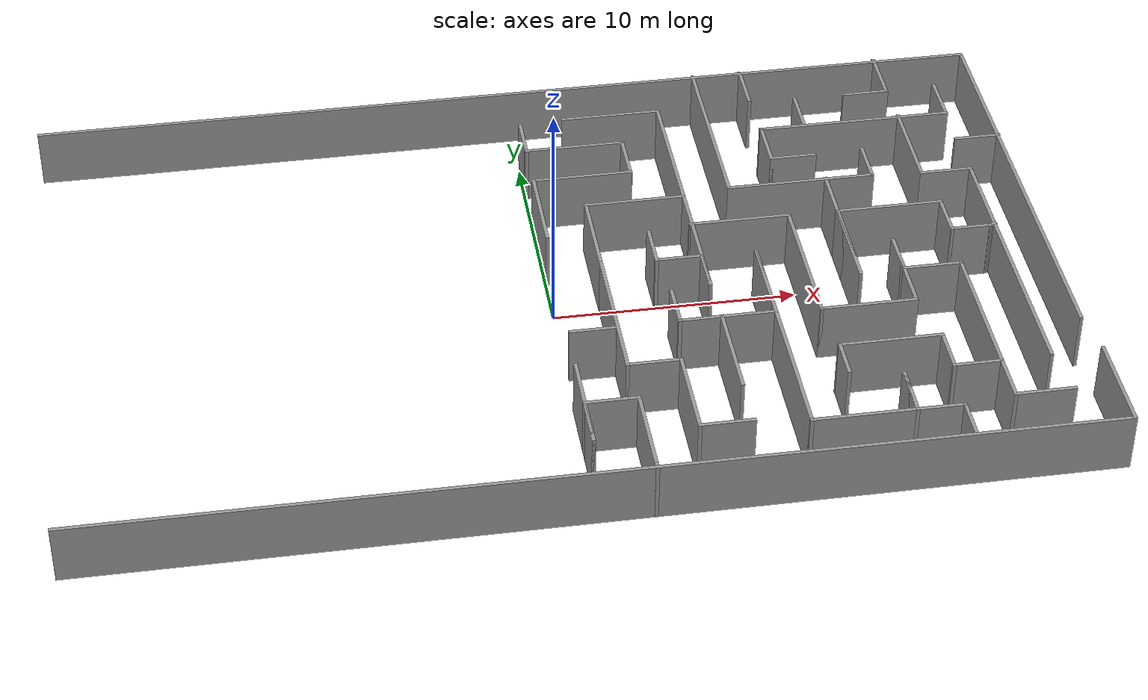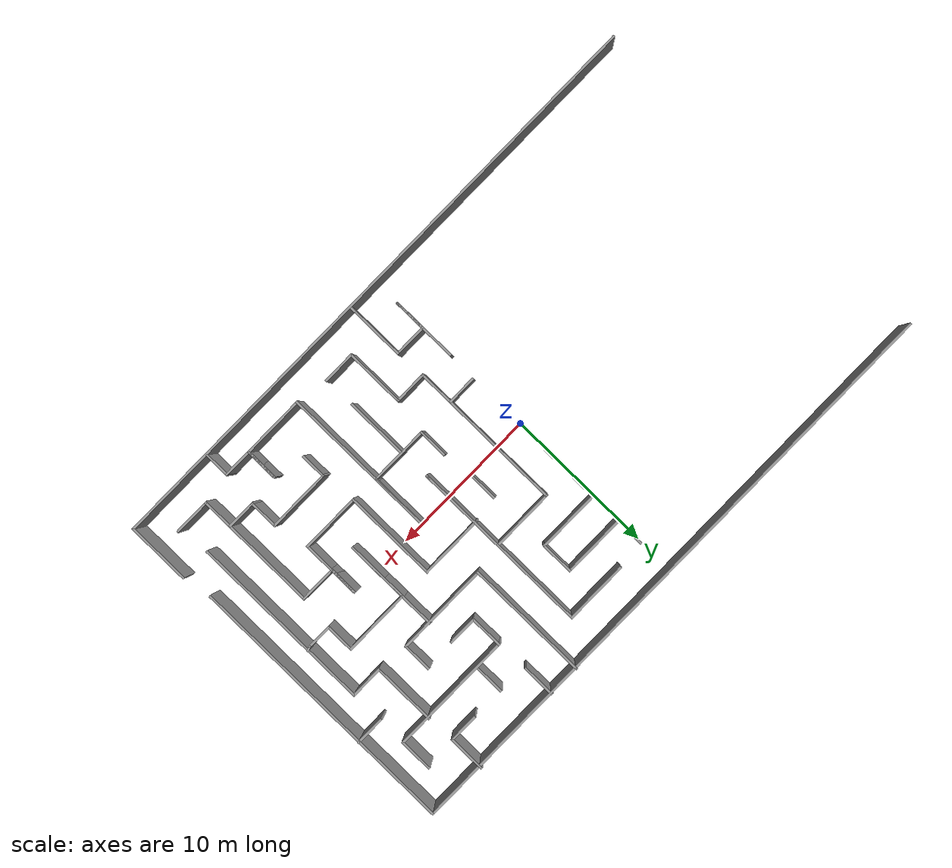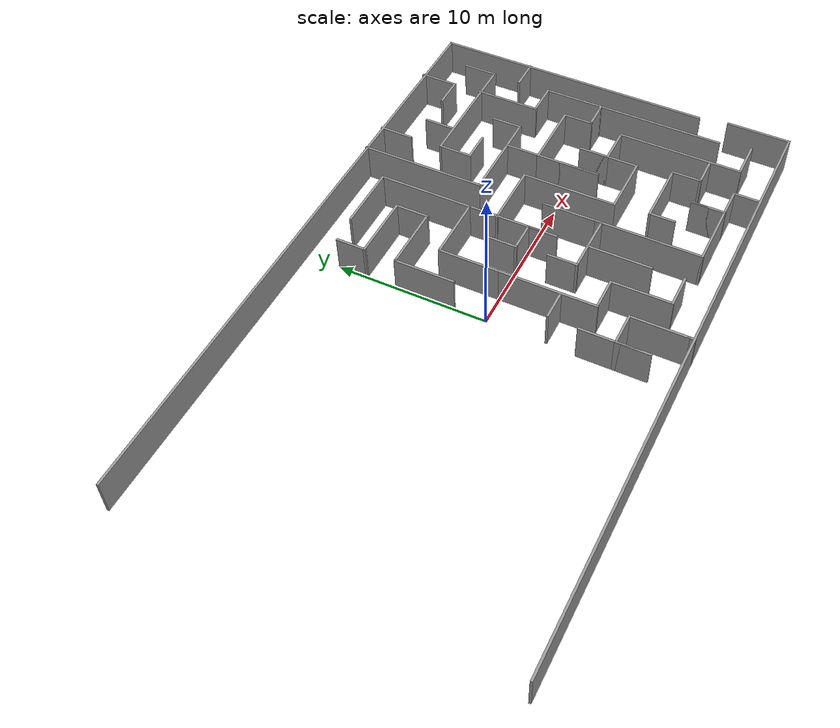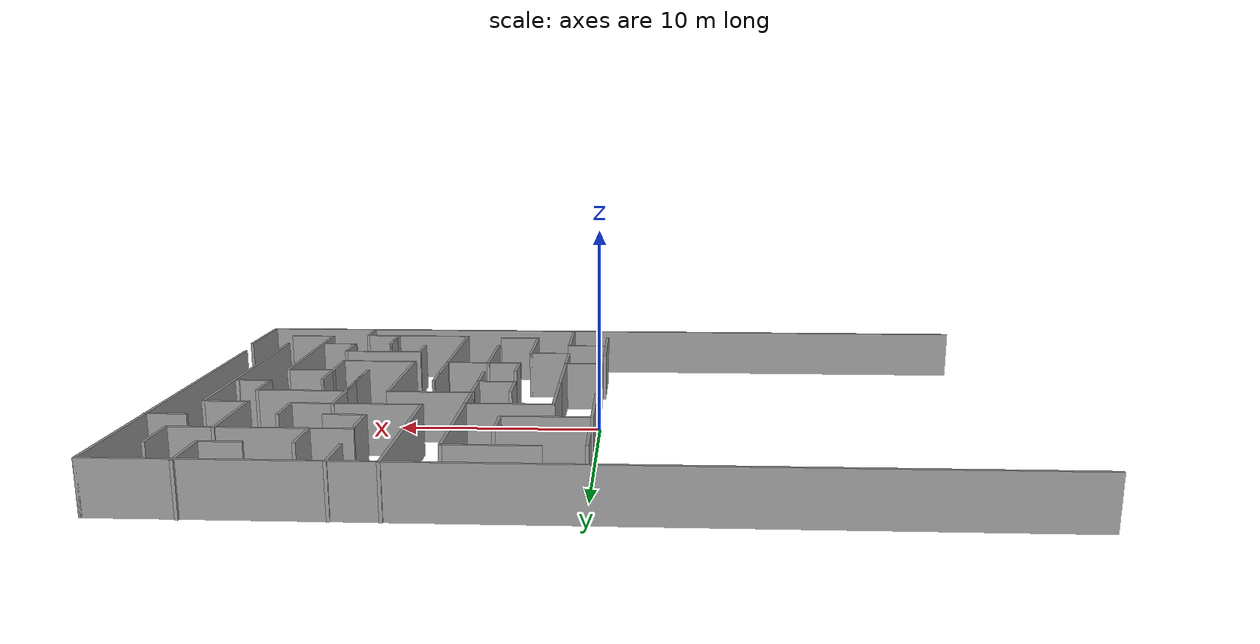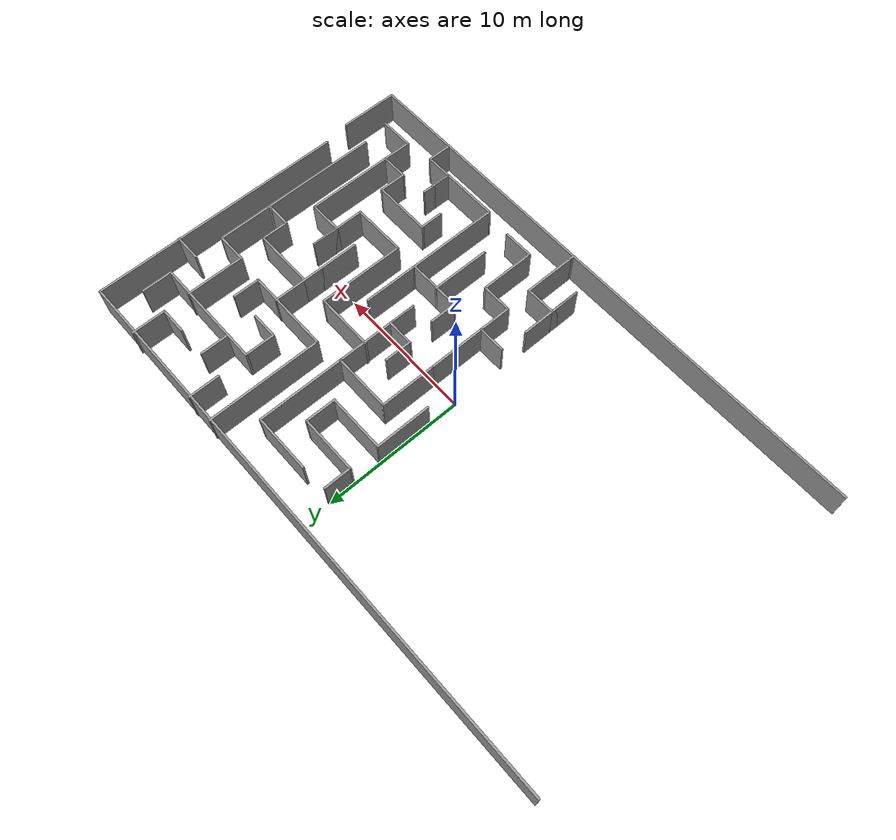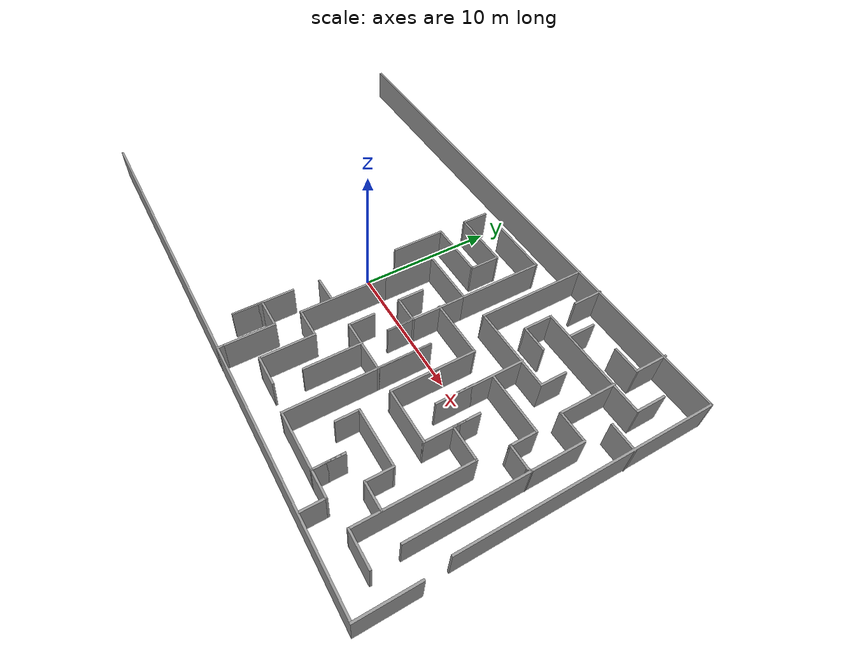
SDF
<sdf version="1.7">
 <model name="maze_model">
  <pose>0.068092 0.23364 0 0 -0 0</pose>
  <link name="Wall_104">
   <collision name="Wall_104_Collision">
    <geometry><box><size>4 0.15 2.5</size></box></geometry>
    <pose>0 0 1.25 0 -0 0</pose>
   </collision>
   <visual name="Wall_104_Visual">
    <pose>0 0 1.25 0 -0 0</pose>
    <geometry><box><size>4 0.15 2.5</size></box></geometry>
    <material>
     <script><uri>file://media/materials/scripts/gazebo.material</uri><name>Gazebo/Grey</name></script>
     <ambient>1 1 1 1</ambient>
    </material>
    <meta><layer>0</layer></meta>
   </visual>
   <pose>0.004921 3.89265 0 0 -0 1.5708</pose>
  </link>
  <link name="Wall_105">
   <collision name="Wall_105_Collision">
    <geometry><box><size>4.25 0.15 2.5</size></box></geometry>
    <pose>0 0 1.25 0 -0 0</pose>
   </collision>
   <visual name="Wall_105_Visual">
    <pose>0 0 1.25 0 -0 0</pose>
    <geometry><box><size>4.25 0.15 2.5</size></box></geometry>
    <material>
     <script><uri>file://media/materials/scripts/gazebo.material</uri><name>Gazebo/Grey</name></script>
     <ambient>1 1 1 1</ambient>
    </material>
    <meta><layer>0</layer></meta>
   </visual>
   <pose>2.05492 5.81765 0 0 -0 0</pose>
  </link>
  <link name="Wall_106">
   <collision name="Wall_106_Collision">
    <geometry><box><size>2.25 0.15 2.5</size></box></geometry>
    <pose>0 0 1.25 0 -0 0</pose>
   </collision>
   <visual name="Wall_106_Visual">
    <pose>0 0 1.25 0 -0 0</pose>
    <geometry><box><size>2.25 0.15 2.5</size></box></geometry>
    <material>
     <script><uri>file://media/materials/scripts/gazebo.material</uri><name>Gazebo/Grey</name></script>
     <ambient>1 1 1 1</ambient>
    </material>
    <meta><layer>0</layer></meta>
   </visual>
   <pose>4.10492 6.86765 0 0 -0 1.5708</pose>
  </link>
  <link name="Wall_107">
   <collision name="Wall_107_Collision">
    <geometry><box><size>4.25 0.15 2.5</size></box></geometry>
    <pose>0 0 1.25 0 -0 0</pose>
   </collision>
   <visual name="Wall_107_Visual">
    <pose>0 0 1.25 0 -0 0</pose>
    <geometry><box><size>4.25 0.15 2.5</size></box></geometry>
    <material>
     <script><uri>file://media/materials/scripts/gazebo.material</uri><name>Gazebo/Grey</name></script>
     <ambient>1 1 1 1</ambient>
    </material>
    <meta><layer>0</layer></meta>
   </visual>
   <pose>2.05492 7.91765 0 0 -0 3.14159</pose>
  </link>
  <link name="Wall_108">
   <collision name="Wall_108_Collision">
    <geometry><box><size>2 0.15 2.5</size></box></geometry>
    <pose>0 0 1.25 0 -0 0</pose>
   </collision>
   <visual name="Wall_108_Visual">
    <pose>0 0 1.25 0 -0 0</pose>
    <geometry><box><size>2 0.15 2.5</size></box></geometry>
    <material>
     <script><uri>file://media/materials/scripts/gazebo.material</uri><name>Gazebo/Grey</name></script>
     <ambient>1 1 1 1</ambient>
    </material>
    <meta><layer>0</layer></meta>
   </visual>
   <pose>0.004921 8.84265 0 0 -0 1.5708</pose>
  </link>
  <link name="Wall_115">
   <collision name="Wall_115_Collision">
    <geometry><box><size>4.5 0.15 2.5</size></box></geometry>
    <pose>0 0 1.25 0 -0 0</pose>
   </collision>
   <visual name="Wall_115_Visual">
    <pose>0 0 1.25 0 -0 0</pose>
    <geometry><box><size>4.5 0.15 2.5</size></box></geometry>
    <material>
     <script><uri>file://media/materials/scripts/gazebo.material</uri><name>Gazebo/Grey</name></script>
     <ambient>1 1 1 1</ambient>
    </material>
    <meta><layer>0</layer></meta>
   </visual>
   <pose>-0.092291 -8.24265 0 0 -0 -1.5708</pose>
  </link>
  <link name="Wall_116">
   <collision name="Wall_116_Collision">
    <geometry><box><size>2.25 0.15 2.5</size></box></geometry>
    <pose>0 0 1.25 0 -0 0</pose>
   </collision>
   <visual name="Wall_116_Visual">
    <pose>0 0 1.25 0 -0 0</pose>
    <geometry><box><size>2.25 0.15 2.5</size></box></geometry>
    <material>
     <script><uri>file://media/materials/scripts/gazebo.material</uri><name>Gazebo/Grey</name></script>
     <ambient>1 1 1 1</ambient>
    </material>
    <meta><layer>0</layer></meta>
   </visual>
   <pose>-0.092291 -9.36765 0 0 -0 1.5708</pose>
  </link>
  <link name="Wall_117">
   <collision name="Wall_117_Collision">
    <geometry><box><size>2.25 0.15 2.5</size></box></geometry>
    <pose>0 0 1.25 0 -0 0</pose>
   </collision>
   <visual name="Wall_117_Visual">
    <pose>0 0 1.25 0 -0 0</pose>
    <geometry><box><size>2.25 0.15 2.5</size></box></geometry>
    <material>
     <script><uri>file://media/materials/scripts/gazebo.material</uri><name>Gazebo/Grey</name></script>
     <ambient>1 1 1 1</ambient>
    </material>
    <meta><layer>0</layer></meta>
   </visual>
   <pose>0.957709 -8.31766 0 0 -0 0</pose>
  </link>
  <link name="Wall_118">
   <collision name="Wall_118_Collision">
    <geometry><box><size>3.75 0.15 2.5</size></box></geometry>
    <pose>0 0 1.25 0 -0 0</pose>
   </collision>
   <visual name="Wall_118_Visual">
    <pose>0 0 1.25 0 -0 0</pose>
    <geometry><box><size>3.75 0.15 2.5</size></box></geometry>
    <material>
     <script><uri>file://media/materials/scripts/gazebo.material</uri><name>Gazebo/Grey</name></script>
     <ambient>1 1 1 1</ambient>
    </material>
    <meta><layer>0</layer></meta>
   </visual>
   <pose>2.00771 -10.1177 0 0 -0 -1.5708</pose>
  </link>
  <link name="Wall_119">
   <collision name="Wall_119_Collision">
    <geometry><box><size>0.5 0.15 2.5</size></box></geometry>
    <pose>0 0 1.25 0 -0 0</pose>
   </collision>
   <visual name="Wall_119_Visual">
    <pose>0 0 1.25 0 -0 0</pose>
    <geometry><box><size>0.5 0.15 2.5</size></box></geometry>
    <material>
     <script><uri>file://media/materials/scripts/gazebo.material</uri><name>Gazebo/Grey</name></script>
     <ambient>1 1 1 1</ambient>
    </material>
    <meta><layer>0</layer></meta>
   </visual>
   <pose>2.00771 -12.0927 0 0 -0 -1.5708</pose>
  </link>
  <link name="Wall_121">
   <collision name="Wall_121_Collision">
    <geometry><box><size>4 0.15 2.5</size></box></geometry>
    <pose>0 0 1.25 0 -0 0</pose>
   </collision>
   <visual name="Wall_121_Visual">
    <pose>0 0 1.25 0 -0 0</pose>
    <geometry><box><size>4 0.15 2.5</size></box></geometry>
    <material>
     <script><uri>file://media/materials/scripts/gazebo.material</uri><name>Gazebo/Grey</name></script>
     <ambient>1 1 1 1</ambient>
    </material>
    <meta><layer>0</layer></meta>
   </visual>
   <pose>1.89756 1.90459 0 0 -0 1.5708</pose>
  </link>
  <link name="Wall_122">
   <collision name="Wall_122_Collision">
    <geometry><box><size>4.25 0.15 2.5</size></box></geometry>
    <pose>0 0 1.25 0 -0 0</pose>
   </collision>
   <visual name="Wall_122_Visual">
    <pose>0 0 1.25 0 -0 0</pose>
    <geometry><box><size>4.25 0.15 2.5</size></box></geometry>
    <material>
     <script><uri>file://media/materials/scripts/gazebo.material</uri><name>Gazebo/Grey</name></script>
     <ambient>1 1 1 1</ambient>
    </material>
    <meta><layer>0</layer></meta>
   </visual>
   <pose>3.94756 3.82959 0 0 -0 0</pose>
  </link>
  <link name="Wall_123">
   <collision name="Wall_123_Collision">
    <geometry><box><size>6.25 0.15 2.5</size></box></geometry>
    <pose>0 0 1.25 0 -0 0</pose>
   </collision>
   <visual name="Wall_123_Visual">
    <pose>0 0 1.25 0 -0 0</pose>
    <geometry><box><size>6.25 0.15 2.5</size></box></geometry>
    <material>
     <script><uri>file://media/materials/scripts/gazebo.material</uri><name>Gazebo/Grey</name></script>
     <ambient>1 1 1 1</ambient>
    </material>
    <meta><layer>0</layer></meta>
   </visual>
   <pose>5.99756 6.87959 0 0 -0 1.5708</pose>
  </link>
  <link name="Wall_124">
   <collision name="Wall_124_Collision">
    <geometry><box><size>4.25 0.15 2.5</size></box></geometry>
    <pose>0 0 1.25 0 -0 0</pose>
   </collision>
   <visual name="Wall_124_Visual">
    <pose>0 0 1.25 0 -0 0</pose>
    <geometry><box><size>4.25 0.15 2.5</size></box></geometry>
    <material>
     <script><uri>file://media/materials/scripts/gazebo.material</uri><name>Gazebo/Grey</name></script>
     <ambient>1 1 1 1</ambient>
    </material>
    <meta><layer>0</layer></meta>
   </visual>
   <pose>3.94756 9.92959 0 0 -0 3.14159</pose>
  </link>
  <link name="Wall_126">
   <collision name="Wall_126_Collision">
    <geometry><box><size>6 0.15 2.5</size></box></geometry>
    <pose>0 0 1.25 0 -0 0</pose>
   </collision>
   <visual name="Wall_126_Visual">
    <pose>0 0 1.25 0 -0 0</pose>
    <geometry><box><size>6 0.15 2.5</size></box></geometry>
    <material>
     <script><uri>file://media/materials/scripts/gazebo.material</uri><name>Gazebo/Grey</name></script>
     <ambient>1 1 1 1</ambient>
    </material>
    <meta><layer>0</layer></meta>
   </visual>
   <pose>5.99756 0.904594 0 0 -0 -1.5708</pose>
  </link>
  <link name="Wall_127">
   <collision name="Wall_127_Collision">
    <geometry><box><size>2 0.15 2.5</size></box></geometry>
    <pose>0 0 1.25 0 -0 0</pose>
   </collision>
   <visual name="Wall_127_Visual">
    <pose>0 0 1.25 0 -0 0</pose>
    <geometry><box><size>2 0.15 2.5</size></box></geometry>
    <material>
     <script><uri>file://media/materials/scripts/gazebo.material</uri><name>Gazebo/Grey</name></script>
     <ambient>1 1 1 1</ambient>
    </material>
    <meta><layer>0</layer></meta>
   </visual>
   <pose>5.99756 -1.09541 0 0 -0 1.5708</pose>
  </link>
  <link name="Wall_128">
   <collision name="Wall_128_Collision">
    <geometry><box><size>2 0.15 2.5</size></box></geometry>
    <pose>0 0 1.25 0 -0 0</pose>
   </collision>
   <visual name="Wall_128_Visual">
    <pose>0 0 1.25 0 -0 0</pose>
    <geometry><box><size>2 0.15 2.5</size></box></geometry>
    <material>
     <script><uri>file://media/materials/scripts/gazebo.material</uri><name>Gazebo/Grey</name></script>
     <ambient>1 1 1 1</ambient>
    </material>
    <meta><layer>0</layer></meta>
   </visual>
   <pose>5.07256 -0.170406 0 0 -0 3.14159</pose>
  </link>
  <link name="Wall_129">
   <collision name="Wall_129_Collision">
    <geometry><box><size>2 0.15 2.5</size></box></geometry>
    <pose>0 0 1.25 0 -0 0</pose>
   </collision>
   <visual name="Wall_129_Visual">
    <pose>0 0 1.25 0 -0 0</pose>
    <geometry><box><size>2 0.15 2.5</size></box></geometry>
    <material>
     <script><uri>file://media/materials/scripts/gazebo.material</uri><name>Gazebo/Grey</name></script>
     <ambient>1 1 1 1</ambient>
    </material>
    <meta><layer>0</layer></meta>
   </visual>
   <pose>4.14756 0.754594 0 0 -0 1.5708</pose>
  </link>
  <link name="Wall_131">
   <collision name="Wall_131_Collision">
    <geometry><box><size>4.25 0.15 2.5</size></box></geometry>
    <pose>0 0 1.25 0 -0 0</pose>
   </collision>
   <visual name="Wall_131_Visual">
    <pose>0 0 1.25 0 -0 0</pose>
    <geometry><box><size>4.25 0.15 2.5</size></box></geometry>
    <material>
     <script><uri>file://media/materials/scripts/gazebo.material</uri><name>Gazebo/Grey</name></script>
     <ambient>1 1 1 1</ambient>
    </material>
    <meta><layer>0</layer></meta>
   </visual>
   <pose>7.98744 1.93097 0 0 -0 0</pose>
  </link>
  <link name="Wall_132">
   <collision name="Wall_132_Collision">
    <geometry><box><size>6.25 0.15 2.5</size></box></geometry>
    <pose>0 0 1.25 0 -0 0</pose>
   </collision>
   <visual name="Wall_132_Visual">
    <pose>0 0 1.25 0 -0 0</pose>
    <geometry><box><size>6.25 0.15 2.5</size></box></geometry>
    <material>
     <script><uri>file://media/materials/scripts/gazebo.material</uri><name>Gazebo/Grey</name></script>
     <ambient>1 1 1 1</ambient>
    </material>
    <meta><layer>0</layer></meta>
   </visual>
   <pose>10.0374 -1.11903 0 0 -0 -1.5708</pose>
  </link>
  <link name="Wall_133">
   <collision name="Wall_133_Collision">
    <geometry><box><size>4 0.15 2.5</size></box></geometry>
    <pose>0 0 1.25 0 -0 0</pose>
   </collision>
   <visual name="Wall_133_Visual">
    <pose>0 0 1.25 0 -0 0</pose>
    <geometry><box><size>4 0.15 2.5</size></box></geometry>
    <material>
     <script><uri>file://media/materials/scripts/gazebo.material</uri><name>Gazebo/Grey</name></script>
     <ambient>1 1 1 1</ambient>
    </material>
    <meta><layer>0</layer></meta>
   </visual>
   <pose>11.9624 -4.16903 0 0 -0 0</pose>
  </link>
  <link name="Wall_134">
   <collision name="Wall_134_Collision">
    <geometry><box><size>4 0.15 2.5</size></box></geometry>
    <pose>0 0 1.25 0 -0 0</pose>
   </collision>
   <visual name="Wall_134_Visual">
    <pose>0 0 1.25 0 -0 0</pose>
    <geometry><box><size>4 0.15 2.5</size></box></geometry>
    <material>
     <script><uri>file://media/materials/scripts/gazebo.material</uri><name>Gazebo/Grey</name></script>
     <ambient>1 1 1 1</ambient>
    </material>
    <meta><layer>0</layer></meta>
   </visual>
   <pose>13.8874 -2.24403 0 0 -0 1.5708</pose>
  </link>
  <link name="Wall_135">
   <collision name="Wall_135_Collision">
    <geometry><box><size>2 0.15 2.5</size></box></geometry>
    <pose>0 0 1.25 0 -0 0</pose>
   </collision>
   <visual name="Wall_135_Visual">
    <pose>0 0 1.25 0 -0 0</pose>
    <geometry><box><size>2 0.15 2.5</size></box></geometry>
    <material>
     <script><uri>file://media/materials/scripts/gazebo.material</uri><name>Gazebo/Grey</name></script>
     <ambient>1 1 1 1</ambient>
    </material>
    <meta><layer>0</layer></meta>
   </visual>
   <pose>13.8874 -1.24403 0 0 -0 -1.5708</pose>
  </link>
  <link name="Wall_136">
   <collision name="Wall_136_Collision">
    <geometry><box><size>2.5 0.15 2.5</size></box></geometry>
    <pose>0 0 1.25 0 -0 0</pose>
   </collision>
   <visual name="Wall_136_Visual">
    <pose>0 0 1.25 0 -0 0</pose>
    <geometry><box><size>2.5 0.15 2.5</size></box></geometry>
    <material>
     <script><uri>file://media/materials/scripts/gazebo.material</uri><name>Gazebo/Grey</name></script>
     <ambient>1 1 1 1</ambient>
    </material>
    <meta><layer>0</layer></meta>
   </visual>
   <pose>15.0624 -2.16903 0 0 -0 0</pose>
  </link>
  <link name="Wall_137">
   <collision name="Wall_137_Collision">
    <geometry><box><size>8.25 0.15 2.5</size></box></geometry>
    <pose>0 0 1.25 0 -0 0</pose>
   </collision>
   <visual name="Wall_137_Visual">
    <pose>0 0 1.25 0 -0 0</pose>
    <geometry><box><size>8.25 0.15 2.5</size></box></geometry>
    <material>
     <script><uri>file://media/materials/scripts/gazebo.material</uri><name>Gazebo/Grey</name></script>
     <ambient>1 1 1 1</ambient>
    </material>
    <meta><layer>0</layer></meta>
   </visual>
   <pose>16.2374 -6.21903 0 0 -0 -1.5708</pose>
  </link>
  <link name="Wall_138">
   <collision name="Wall_138_Collision">
    <geometry><box><size>2.5 0.15 2.5</size></box></geometry>
    <pose>0 0 1.25 0 -0 0</pose>
   </collision>
   <visual name="Wall_138_Visual">
    <pose>0 0 1.25 0 -0 0</pose>
    <geometry><box><size>2.5 0.15 2.5</size></box></geometry>
    <material>
     <script><uri>file://media/materials/scripts/gazebo.material</uri><name>Gazebo/Grey</name></script>
     <ambient>1 1 1 1</ambient>
    </material>
    <meta><layer>0</layer></meta>
   </visual>
   <pose>17.4124 -10.269 0 0 -0 0</pose>
  </link>
  <link name="Wall_14">
   <collision name="Wall_14_Collision">
    <geometry><box><size>40.5 0.15 2.5</size></box></geometry>
    <pose>0 0 1.25 0 -0 0</pose>
   </collision>
   <visual name="Wall_14_Visual">
    <pose>0 0 1.25 0 -0 0</pose>
    <geometry><box><size>40.5 0.15 2.5</size></box></geometry>
    <material>
     <script><uri>file://media/materials/scripts/gazebo.material</uri><name>Gazebo/Grey</name></script>
     <ambient>1 1 1 1</ambient>
    </material>
    <meta><layer>0</layer></meta>
   </visual>
   <pose>-0.159962 12.1446 0 0 -0 0</pose>
  </link>
  <link name="Wall_140">
   <collision name="Wall_140_Collision">
    <geometry><box><size>2 0.15 2.5</size></box></geometry>
    <pose>0 0 1.25 0 -0 0</pose>
   </collision>
   <visual name="Wall_140_Visual">
    <pose>0 0 1.25 0 -0 0</pose>
    <geometry><box><size>2 0.15 2.5</size></box></geometry>
    <material>
     <script><uri>file://media/materials/scripts/gazebo.material</uri><name>Gazebo/Grey</name></script>
     <ambient>1 1 1 1</ambient>
    </material>
    <meta><layer>0</layer></meta>
   </visual>
   <pose>15.2876 -8.28266 0 0 -0 3.14159</pose>
  </link>
  <link name="Wall_141">
   <collision name="Wall_141_Collision">
    <geometry><box><size>2 0.15 2.5</size></box></geometry>
    <pose>0 0 1.25 0 -0 0</pose>
   </collision>
   <visual name="Wall_141_Visual">
    <pose>0 0 1.25 0 -0 0</pose>
    <geometry><box><size>2 0.15 2.5</size></box></geometry>
    <material>
     <script><uri>file://media/materials/scripts/gazebo.material</uri><name>Gazebo/Grey</name></script>
     <ambient>1 1 1 1</ambient>
    </material>
    <meta><layer>0</layer></meta>
   </visual>
   <pose>14.3626 -7.35766 0 0 -0 1.5708</pose>
  </link>
  <link name="Wall_142">
   <collision name="Wall_142_Collision">
    <geometry><box><size>4.25 0.15 2.5</size></box></geometry>
    <pose>0 0 1.25 0 -0 0</pose>
   </collision>
   <visual name="Wall_142_Visual">
    <pose>0 0 1.25 0 -0 0</pose>
    <geometry><box><size>4.25 0.15 2.5</size></box></geometry>
    <material>
     <script><uri>file://media/materials/scripts/gazebo.material</uri><name>Gazebo/Grey</name></script>
     <ambient>1 1 1 1</ambient>
    </material>
    <meta><layer>0</layer></meta>
   </visual>
   <pose>12.3126 -6.43266 0 0 -0 3.14159</pose>
  </link>
  <link name="Wall_145">
   <collision name="Wall_145_Collision">
    <geometry><box><size>1.75 0.15 2.5</size></box></geometry>
    <pose>0 0 1.25 0 -0 0</pose>
   </collision>
   <visual name="Wall_145_Visual">
    <pose>0 0 1.25 0 -0 0</pose>
    <geometry><box><size>1.75 0.15 2.5</size></box></geometry>
    <material>
     <script><uri>file://media/materials/scripts/gazebo.material</uri><name>Gazebo/Grey</name></script>
     <ambient>1 1 1 1</ambient>
    </material>
    <meta><layer>0</layer></meta>
   </visual>
   <pose>10.2626 -7.23266 0 0 -0 -1.5708</pose>
  </link>
  <link name="Wall_147">
   <collision name="Wall_147_Collision">
    <geometry><box><size>1.75 0.15 2.5</size></box></geometry>
    <pose>0 0 1.25 0 -0 0</pose>
   </collision>
   <visual name="Wall_147_Visual">
    <pose>0 0 1.25 0 -0 0</pose>
    <geometry><box><size>1.75 0.15 2.5</size></box></geometry>
    <material>
     <script><uri>file://media/materials/scripts/gazebo.material</uri><name>Gazebo/Grey</name></script>
     <ambient>1 1 1 1</ambient>
    </material>
    <meta><layer>0</layer></meta>
   </visual>
   <pose>14.1822 -11.3589 0 0 -0 1.5708</pose>
  </link>
  <link name="Wall_148">
   <collision name="Wall_148_Collision">
    <geometry><box><size>2 0.15 2.5</size></box></geometry>
    <pose>0 0 1.25 0 -0 0</pose>
   </collision>
   <visual name="Wall_148_Visual">
    <pose>0 0 1.25 0 -0 0</pose>
    <geometry><box><size>2 0.15 2.5</size></box></geometry>
    <material>
     <script><uri>file://media/materials/scripts/gazebo.material</uri><name>Gazebo/Grey</name></script>
     <ambient>1 1 1 1</ambient>
    </material>
    <meta><layer>0</layer></meta>
   </visual>
   <pose>13.2572 -10.5589 0 0 -0 3.14159</pose>
  </link>
  <link name="Wall_149">
   <collision name="Wall_149_Collision">
    <geometry><box><size>2.25 0.15 2.5</size></box></geometry>
    <pose>0 0 1.25 0 -0 0</pose>
   </collision>
   <visual name="Wall_149_Visual">
    <pose>0 0 1.25 0 -0 0</pose>
    <geometry><box><size>2.25 0.15 2.5</size></box></geometry>
    <material>
     <script><uri>file://media/materials/scripts/gazebo.material</uri><name>Gazebo/Grey</name></script>
     <ambient>1 1 1 1</ambient>
    </material>
    <meta><layer>0</layer></meta>
   </visual>
   <pose>12.3322 -9.50891 0 0 -0 1.5708</pose>
  </link>
  <link name="Wall_15">
   <collision name="Wall_15_Collision">
    <geometry><box><size>18.5 0.15 2.5</size></box></geometry>
    <pose>0 0 1.25 0 -0 0</pose>
   </collision>
   <visual name="Wall_15_Visual">
    <pose>0 0 1.25 0 -0 0</pose>
    <geometry><box><size>18.5 0.15 2.5</size></box></geometry>
    <material>
     <script><uri>file://media/materials/scripts/gazebo.material</uri><name>Gazebo/Grey</name></script>
     <ambient>1 1 1 1</ambient>
    </material>
    <meta><layer>0</layer></meta>
   </visual>
   <pose>20.015 2.9696 0 0 -0 -1.5708</pose>
  </link>
  <link name="Wall_150">
   <collision name="Wall_150_Collision">
    <geometry><box><size>2.25 0.15 2.5</size></box></geometry>
    <pose>0 0 1.25 0 -0 0</pose>
   </collision>
   <visual name="Wall_150_Visual">
    <pose>0 0 1.25 0 -0 0</pose>
    <geometry><box><size>2.25 0.15 2.5</size></box></geometry>
    <material>
     <script><uri>file://media/materials/scripts/gazebo.material</uri><name>Gazebo/Grey</name></script>
     <ambient>1 1 1 1</ambient>
    </material>
    <meta><layer>0</layer></meta>
   </visual>
   <pose>12.3322 -9.50891 0 0 -0 -1.5708</pose>
  </link>
  <link name="Wall_151">
   <collision name="Wall_151_Collision">
    <geometry><box><size>4.25 0.15 2.5</size></box></geometry>
    <pose>0 0 1.25 0 -0 0</pose>
   </collision>
   <visual name="Wall_151_Visual">
    <pose>0 0 1.25 0 -0 0</pose>
    <geometry><box><size>4.25 0.15 2.5</size></box></geometry>
    <material>
     <script><uri>file://media/materials/scripts/gazebo.material</uri><name>Gazebo/Grey</name></script>
     <ambient>1 1 1 1</ambient>
    </material>
    <meta><layer>0</layer></meta>
   </visual>
   <pose>10.2822 -10.5589 0 0 -0 3.14159</pose>
  </link>
  <link name="Wall_152">
   <collision name="Wall_152_Collision">
    <geometry><box><size>10.5 0.15 2.5</size></box></geometry>
    <pose>0 0 1.25 0 -0 0</pose>
   </collision>
   <visual name="Wall_152_Visual">
    <pose>0 0 1.25 0 -0 0</pose>
    <geometry><box><size>10.5 0.15 2.5</size></box></geometry>
    <material>
     <script><uri>file://media/materials/scripts/gazebo.material</uri><name>Gazebo/Grey</name></script>
     <ambient>1 1 1 1</ambient>
    </material>
    <meta><layer>0</layer></meta>
   </visual>
   <pose>8.23218 -5.38391 0 0 -0 1.5708</pose>
  </link>
  <link name="Wall_153">
   <collision name="Wall_153_Collision">
    <geometry><box><size>4 0.15 2.5</size></box></geometry>
    <pose>0 0 1.25 0 -0 0</pose>
   </collision>
   <visual name="Wall_153_Visual">
    <pose>0 0 1.25 0 -0 0</pose>
    <geometry><box><size>4 0.15 2.5</size></box></geometry>
    <material>
     <script><uri>file://media/materials/scripts/gazebo.material</uri><name>Gazebo/Grey</name></script>
     <ambient>1 1 1 1</ambient>
    </material>
    <meta><layer>0</layer></meta>
   </visual>
   <pose>8.23218 -2.13391 0 0 -0 -1.5708</pose>
  </link>
  <link name="Wall_154">
   <collision name="Wall_154_Collision">
    <geometry><box><size>4 0.15 2.5</size></box></geometry>
    <pose>0 0 1.25 0 -0 0</pose>
   </collision>
   <visual name="Wall_154_Visual">
    <pose>0 0 1.25 0 -0 0</pose>
    <geometry><box><size>4 0.15 2.5</size></box></geometry>
    <material>
     <script><uri>file://media/materials/scripts/gazebo.material</uri><name>Gazebo/Grey</name></script>
     <ambient>1 1 1 1</ambient>
    </material>
    <meta><layer>0</layer></meta>
   </visual>
   <pose>6.30718 -4.05891 0 0 -0 3.14159</pose>
  </link>
  <link name="Wall_155">
   <collision name="Wall_155_Collision">
    <geometry><box><size>2 0.15 2.5</size></box></geometry>
    <pose>0 0 1.25 0 -0 0</pose>
   </collision>
   <visual name="Wall_155_Visual">
    <pose>0 0 1.25 0 -0 0</pose>
    <geometry><box><size>2 0.15 2.5</size></box></geometry>
    <material>
     <script><uri>file://media/materials/scripts/gazebo.material</uri><name>Gazebo/Grey</name></script>
     <ambient>1 1 1 1</ambient>
    </material>
    <meta><layer>0</layer></meta>
   </visual>
   <pose>4.38218 -3.13391 0 0 -0 1.5708</pose>
  </link>
  <link name="Wall_157">
   <collision name="Wall_157_Collision">
    <geometry><box><size>4.25 0.15 2.5</size></box></geometry>
    <pose>0 0 1.25 0 -0 0</pose>
   </collision>
   <visual name="Wall_157_Visual">
    <pose>0 0 1.25 0 -0 0</pose>
    <geometry><box><size>4.25 0.15 2.5</size></box></geometry>
    <material>
     <script><uri>file://media/materials/scripts/gazebo.material</uri><name>Gazebo/Grey</name></script>
     <ambient>1 1 1 1</ambient>
    </material>
    <meta><layer>0</layer></meta>
   </visual>
   <pose>6.0605 -6.08723 0 0 -0 -1.5708</pose>
  </link>
  <link name="Wall_159">
   <collision name="Wall_159_Collision">
    <geometry><box><size>2 0.15 2.5</size></box></geometry>
    <pose>0 0 1.25 0 -0 0</pose>
   </collision>
   <visual name="Wall_159_Visual">
    <pose>0 0 1.25 0 -0 0</pose>
    <geometry><box><size>2 0.15 2.5</size></box></geometry>
    <material>
     <script><uri>file://media/materials/scripts/gazebo.material</uri><name>Gazebo/Grey</name></script>
     <ambient>1 1 1 1</ambient>
    </material>
    <meta><layer>0</layer></meta>
   </visual>
   <pose>0.951601 -4.09876 0 0 -0 3.14159</pose>
  </link>
  <link name="Wall_161">
   <collision name="Wall_161_Collision">
    <geometry><box><size>8.25 0.15 2.5</size></box></geometry>
    <pose>0 0 1.25 0 -0 0</pose>
   </collision>
   <visual name="Wall_161_Visual">
    <pose>0 0 1.25 0 -0 0</pose>
    <geometry><box><size>8.25 0.15 2.5</size></box></geometry>
    <material>
     <script><uri>file://media/materials/scripts/gazebo.material</uri><name>Gazebo/Grey</name></script>
     <ambient>1 1 1 1</ambient>
    </material>
    <meta><layer>0</layer></meta>
   </visual>
   <pose>7.96786 8.15612 0 0 -0 -1.5708</pose>
  </link>
  <link name="Wall_162">
   <collision name="Wall_162_Collision">
    <geometry><box><size>6.25 0.15 2.5</size></box></geometry>
    <pose>0 0 1.25 0 -0 0</pose>
   </collision>
   <visual name="Wall_162_Visual">
    <pose>0 0 1.25 0 -0 0</pose>
    <geometry><box><size>6.25 0.15 2.5</size></box></geometry>
    <material>
     <script><uri>file://media/materials/scripts/gazebo.material</uri><name>Gazebo/Grey</name></script>
     <ambient>1 1 1 1</ambient>
    </material>
    <meta><layer>0</layer></meta>
   </visual>
   <pose>11.0179 4.10612 0 0 -0 0</pose>
  </link>
  <link name="Wall_163">
   <collision name="Wall_163_Collision">
    <geometry><box><size>2 0.15 2.5</size></box></geometry>
    <pose>0 0 1.25 0 -0 0</pose>
   </collision>
   <visual name="Wall_163_Visual">
    <pose>0 0 1.25 0 -0 0</pose>
    <geometry><box><size>2 0.15 2.5</size></box></geometry>
    <material>
     <script><uri>file://media/materials/scripts/gazebo.material</uri><name>Gazebo/Grey</name></script>
     <ambient>1 1 1 1</ambient>
    </material>
    <meta><layer>0</layer></meta>
   </visual>
   <pose>14.0679 5.03113 0 0 -0 1.5708</pose>
  </link>
  <link name="Wall_165">
   <collision name="Wall_165_Collision">
    <geometry><box><size>2.25 0.15 2.5</size></box></geometry>
    <pose>0 0 1.25 0 -0 0</pose>
   </collision>
   <visual name="Wall_165_Visual">
    <pose>0 0 1.25 0 -0 0</pose>
    <geometry><box><size>2.25 0.15 2.5</size></box></geometry>
    <material>
     <script><uri>file://media/materials/scripts/gazebo.material</uri><name>Gazebo/Grey</name></script>
     <ambient>1 1 1 1</ambient>
    </material>
    <meta><layer>0</layer></meta>
   </visual>
   <pose>10.0598 11.1561 0 0 -0 -1.5708</pose>
  </link>
  <link name="Wall_167">
   <collision name="Wall_167_Collision">
    <geometry><box><size>2.5 0.15 2.5</size></box></geometry>
    <pose>0 0 1.25 0 -0 0</pose>
   </collision>
   <visual name="Wall_167_Visual">
    <pose>0 0 1.25 0 -0 0</pose>
    <geometry><box><size>2.5 0.15 2.5</size></box></geometry>
    <material>
     <script><uri>file://media/materials/scripts/gazebo.material</uri><name>Gazebo/Grey</name></script>
     <ambient>1 1 1 1</ambient>
    </material>
    <meta><layer>0</layer></meta>
   </visual>
   <pose>16.0895 11.0927 0 0 -0 -1.5708</pose>
  </link>
  <link name="Wall_168">
   <collision name="Wall_168_Collision">
    <geometry><box><size>2 0.15 2.5</size></box></geometry>
    <pose>0 0 1.25 0 -0 0</pose>
   </collision>
   <visual name="Wall_168_Visual">
    <pose>0 0 1.25 0 -0 0</pose>
    <geometry><box><size>2 0.15 2.5</size></box></geometry>
    <material>
     <script><uri>file://media/materials/scripts/gazebo.material</uri><name>Gazebo/Grey</name></script>
     <ambient>1 1 1 1</ambient>
    </material>
    <meta><layer>0</layer></meta>
   </visual>
   <pose>15.1645 9.91765 0 0 -0 3.14159</pose>
  </link>
  <link name="Wall_17">
   <collision name="Wall_17_Collision">
    <geometry><box><size>4.25 0.15 2.5</size></box></geometry>
    <pose>0 0 1.25 0 -0 0</pose>
   </collision>
   <visual name="Wall_17_Visual">
    <pose>0 0 1.25 0 -0 0</pose>
    <geometry><box><size>4.25 0.15 2.5</size></box></geometry>
    <material>
     <script><uri>file://media/materials/scripts/gazebo.material</uri><name>Gazebo/Grey</name></script>
     <ambient>1 1 1 1</ambient>
    </material>
    <meta><layer>0</layer></meta>
   </visual>
   <pose>20.335 -10.2096 0 0 -0 -1.5708</pose>
  </link>
  <link name="Wall_170">
   <collision name="Wall_170_Collision">
    <geometry><box><size>2.25 0.15 2.5</size></box></geometry>
    <pose>0 0 1.25 0 -0 0</pose>
   </collision>
   <visual name="Wall_170_Visual">
    <pose>0 0 1.25 0 -0 0</pose>
    <geometry><box><size>2.25 0.15 2.5</size></box></geometry>
    <material>
     <script><uri>file://media/materials/scripts/gazebo.material</uri><name>Gazebo/Grey</name></script>
     <ambient>1 1 1 1</ambient>
    </material>
    <meta><layer>0</layer></meta>
   </visual>
   <pose>18.243 9.00265 0 0 -0 -1.5708</pose>
  </link>
  <link name="Wall_171">
   <collision name="Wall_171_Collision">
    <geometry><box><size>8.25 0.15 2.5</size></box></geometry>
    <pose>0 0 1.25 0 -0 0</pose>
   </collision>
   <visual name="Wall_171_Visual">
    <pose>0 0 1.25 0 -0 0</pose>
    <geometry><box><size>8.25 0.15 2.5</size></box></geometry>
    <material>
     <script><uri>file://media/materials/scripts/gazebo.material</uri><name>Gazebo/Grey</name></script>
     <ambient>1 1 1 1</ambient>
    </material>
    <meta><layer>0</layer></meta>
   </visual>
   <pose>14.193 7.95265 0 0 -0 3.14159</pose>
  </link>
  <link name="Wall_172">
   <collision name="Wall_172_Collision">
    <geometry><box><size>2.25 0.15 2.5</size></box></geometry>
    <pose>0 0 1.25 0 -0 0</pose>
   </collision>
   <visual name="Wall_172_Visual">
    <pose>0 0 1.25 0 -0 0</pose>
    <geometry><box><size>2.25 0.15 2.5</size></box></geometry>
    <material>
     <script><uri>file://media/materials/scripts/gazebo.material</uri><name>Gazebo/Grey</name></script>
     <ambient>1 1 1 1</ambient>
    </material>
    <meta><layer>0</layer></meta>
   </visual>
   <pose>10.143 6.90265 0 0 -0 -1.5708</pose>
  </link>
  <link name="Wall_173">
   <collision name="Wall_173_Collision">
    <geometry><box><size>2 0.15 2.5</size></box></geometry>
    <pose>0 0 1.25 0 -0 0</pose>
   </collision>
   <visual name="Wall_173_Visual">
    <pose>0 0 1.25 0 -0 0</pose>
    <geometry><box><size>2 0.15 2.5</size></box></geometry>
    <material>
     <script><uri>file://media/materials/scripts/gazebo.material</uri><name>Gazebo/Grey</name></script>
     <ambient>1 1 1 1</ambient>
    </material>
    <meta><layer>0</layer></meta>
   </visual>
   <pose>11.068 5.85265 0 0 -0 0</pose>
  </link>
  <link name="Wall_175">
   <collision name="Wall_175_Collision">
    <geometry><box><size>2 0.15 2.5</size></box></geometry>
    <pose>0 0 1.25 0 -0 0</pose>
   </collision>
   <visual name="Wall_175_Visual">
    <pose>0 0 1.25 0 -0 0</pose>
    <geometry><box><size>2 0.15 2.5</size></box></geometry>
    <material>
     <script><uri>file://media/materials/scripts/gazebo.material</uri><name>Gazebo/Grey</name></script>
     <ambient>1 1 1 1</ambient>
    </material>
    <meta><layer>0</layer></meta>
   </visual>
   <pose>12.0287 9.00459 0 0 -0 -1.5708</pose>
  </link>
  <link name="Wall_177">
   <collision name="Wall_177_Collision">
    <geometry><box><size>4.25 0.15 2.5</size></box></geometry>
    <pose>0 0 1.25 0 -0 0</pose>
   </collision>
   <visual name="Wall_177_Visual">
    <pose>0 0 1.25 0 -0 0</pose>
    <geometry><box><size>4.25 0.15 2.5</size></box></geometry>
    <material>
     <script><uri>file://media/materials/scripts/gazebo.material</uri><name>Gazebo/Grey</name></script>
     <ambient>1 1 1 1</ambient>
    </material>
    <meta><layer>0</layer></meta>
   </visual>
   <pose>16.1511 5.97223 0 0 -0 -1.5708</pose>
  </link>
  <link name="Wall_178">
   <collision name="Wall_178_Collision">
    <geometry><box><size>2.25 0.15 2.5</size></box></geometry>
    <pose>0 0 1.25 0 -0 0</pose>
   </collision>
   <visual name="Wall_178_Visual">
    <pose>0 0 1.25 0 -0 0</pose>
    <geometry><box><size>2.25 0.15 2.5</size></box></geometry>
    <material>
     <script><uri>file://media/materials/scripts/gazebo.material</uri><name>Gazebo/Grey</name></script>
     <ambient>1 1 1 1</ambient>
    </material>
    <meta><layer>0</layer></meta>
   </visual>
   <pose>17.2011 3.92223 0 0 -0 0</pose>
  </link>
  <link name="Wall_179">
   <collision name="Wall_179_Collision">
    <geometry><box><size>12.25 0.15 2.5</size></box></geometry>
    <pose>0 0 1.25 0 -0 0</pose>
   </collision>
   <visual name="Wall_179_Visual">
    <pose>0 0 1.25 0 -0 0</pose>
    <geometry><box><size>12.25 0.15 2.5</size></box></geometry>
    <material>
     <script><uri>file://media/materials/scripts/gazebo.material</uri><name>Gazebo/Grey</name></script>
     <ambient>1 1 1 1</ambient>
    </material>
    <meta><layer>0</layer></meta>
   </visual>
   <pose>18.2511 -2.12777 0 0 -0 -1.5708</pose>
  </link>
  <link name="Wall_18">
   <collision name="Wall_18_Collision">
    <geometry><box><size>40.75 0.15 2.5</size></box></geometry>
    <pose>0 0 1.25 0 -0 0</pose>
   </collision>
   <visual name="Wall_18_Visual">
    <pose>0 0 1.25 0 -0 0</pose>
    <geometry><box><size>40.75 0.15 2.5</size></box></geometry>
    <material>
     <script><uri>file://media/materials/scripts/gazebo.material</uri><name>Gazebo/Grey</name></script>
     <ambient>1 1 1 1</ambient>
    </material>
    <meta><layer>0</layer></meta>
   </visual>
   <pose>0.034964 -12.2596 0 0 -0 3.14159</pose>
  </link>
  <link name="Wall_181">
   <collision name="Wall_181_Collision">
    <geometry><box><size>6.5 0.15 2.5</size></box></geometry>
    <pose>0 0 1.25 0 -0 0</pose>
   </collision>
   <visual name="Wall_181_Visual">
    <pose>0 0 1.25 0 -0 0</pose>
    <geometry><box><size>6.5 0.15 2.5</size></box></geometry>
    <material>
     <script><uri>file://media/materials/scripts/gazebo.material</uri><name>Gazebo/Grey</name></script>
     <ambient>1 1 1 1</ambient>
    </material>
    <meta><layer>0</layer></meta>
   </visual>
   <pose>12.0902 0.970973 0 0 -0 -1.5708</pose>
  </link>
  <link name="Wall_182">
   <collision name="Wall_182_Collision">
    <geometry><box><size>4.25 0.15 2.5</size></box></geometry>
    <pose>0 0 1.25 0 -0 0</pose>
   </collision>
   <visual name="Wall_182_Visual">
    <pose>0 0 1.25 0 -0 0</pose>
    <geometry><box><size>4.25 0.15 2.5</size></box></geometry>
    <material>
     <script><uri>file://media/materials/scripts/gazebo.material</uri><name>Gazebo/Grey</name></script>
     <ambient>1 1 1 1</ambient>
    </material>
    <meta><layer>0</layer></meta>
   </visual>
   <pose>12.0902 -0.154027 0 0 -0 1.5708</pose>
  </link>
  <link name="Wall_183">
   <collision name="Wall_183_Collision">
    <geometry><box><size>4.5 0.15 2.5</size></box></geometry>
    <pose>0 0 1.25 0 -0 0</pose>
   </collision>
   <visual name="Wall_183_Visual">
    <pose>0 0 1.25 0 -0 0</pose>
    <geometry><box><size>4.5 0.15 2.5</size></box></geometry>
    <material>
     <script><uri>file://media/materials/scripts/gazebo.material</uri><name>Gazebo/Grey</name></script>
     <ambient>1 1 1 1</ambient>
    </material>
    <meta><layer>0</layer></meta>
   </visual>
   <pose>14.2652 1.89597 0 0 -0 0</pose>
  </link>
  <link name="Wall_184">
   <collision name="Wall_184_Collision">
    <geometry><box><size>2 0.15 2.5</size></box></geometry>
    <pose>0 0 1.25 0 -0 0</pose>
   </collision>
   <visual name="Wall_184_Visual">
    <pose>0 0 1.25 0 -0 0</pose>
    <geometry><box><size>2 0.15 2.5</size></box></geometry>
    <material>
     <script><uri>file://media/materials/scripts/gazebo.material</uri><name>Gazebo/Grey</name></script>
     <ambient>1 1 1 1</ambient>
    </material>
    <meta><layer>0</layer></meta>
   </visual>
   <pose>16.4402 0.970973 0 0 -0 -1.5708</pose>
  </link>
  <link name="Wall_185">
   <collision name="Wall_185_Collision">
    <geometry><box><size>1.75 0.15 2.5</size></box></geometry>
    <pose>0 0 1.25 0 -0 0</pose>
   </collision>
   <visual name="Wall_185_Visual">
    <pose>0 0 1.25 0 -0 0</pose>
    <geometry><box><size>1.75 0.15 2.5</size></box></geometry>
    <material>
     <script><uri>file://media/materials/scripts/gazebo.material</uri><name>Gazebo/Grey</name></script>
     <ambient>1 1 1 1</ambient>
    </material>
    <meta><layer>0</layer></meta>
   </visual>
   <pose>17.2402 0.045973 0 0 -0 0</pose>
  </link>
  <link name="Wall_186">
   <collision name="Wall_186_Collision">
    <geometry><box><size>0.15 0.15 2.5</size></box></geometry>
    <pose>0 0 1.25 0 -0 0</pose>
   </collision>
   <visual name="Wall_186_Visual">
    <pose>0 0 1.25 0 -0 0</pose>
    <geometry><box><size>0.15 0.15 2.5</size></box></geometry>
    <material>
     <script><uri>file://media/materials/scripts/gazebo.material</uri><name>Gazebo/Grey</name></script>
     <ambient>1 1 1 1</ambient>
    </material>
    <meta><layer>0</layer></meta>
   </visual>
   <pose>18.0402 0.045973 0 0 -0 0</pose>
  </link>
  <link name="Wall_188">
   <collision name="Wall_188_Collision">
    <geometry><box><size>0.39465 0.15 2.5</size></box></geometry>
    <pose>0 0 1.25 0 -0 0</pose>
   </collision>
   <visual name="Wall_188_Visual">
    <pose>0 0 1.25 0 -0 0</pose>
    <geometry><box><size>0.39465 0.15 2.5</size></box></geometry>
    <material>
     <script><uri>file://media/materials/scripts/gazebo.material</uri><name>Gazebo/Grey</name></script>
     <ambient>1 1 1 1</ambient>
    </material>
    <meta><layer>0</layer></meta>
   </visual>
   <pose>18.1561 0.085264 0 0 -0 -2.8146</pose>
  </link>
  <link name="Wall_190">
   <collision name="Wall_190_Collision">
    <geometry><box><size>2 0.15 2.5</size></box></geometry>
    <pose>0 0 1.25 0 -0 0</pose>
   </collision>
   <visual name="Wall_190_Visual">
    <pose>0 0 1.25 0 -0 0</pose>
    <geometry><box><size>2 0.15 2.5</size></box></geometry>
    <material>
     <script><uri>file://media/materials/scripts/gazebo.material</uri><name>Gazebo/Grey</name></script>
     <ambient>1 1 1 1</ambient>
    </material>
    <meta><layer>0</layer></meta>
   </visual>
   <pose>19.1316 6.05905 0 0 -0 3.14159</pose>
  </link>
  <link name="Wall_74">
   <collision name="Wall_74_Collision">
    <geometry><box><size>6.5 0.15 2.5</size></box></geometry>
    <pose>0 0 1.25 0 -0 0</pose>
   </collision>
   <visual name="Wall_74_Visual">
    <pose>0 0 1.25 0 -0 0</pose>
    <geometry><box><size>6.5 0.15 2.5</size></box></geometry>
    <material>
     <script><uri>file://media/materials/scripts/gazebo.material</uri><name>Gazebo/Grey</name></script>
     <ambient>1 1 1 1</ambient>
    </material>
    <meta><layer>0</layer></meta>
   </visual>
   <pose>1.89756 -3.19541 0 0 -0 -1.5708</pose>
  </link>
  <link name="Wall_75">
   <collision name="Wall_75_Collision">
    <geometry><box><size>2.25 0.15 2.5</size></box></geometry>
    <pose>0 0 1.25 0 -0 0</pose>
   </collision>
   <visual name="Wall_75_Visual">
    <pose>0 0 1.25 0 -0 0</pose>
    <geometry><box><size>2.25 0.15 2.5</size></box></geometry>
    <material>
     <script><uri>file://media/materials/scripts/gazebo.material</uri><name>Gazebo/Grey</name></script>
     <ambient>1 1 1 1</ambient>
    </material>
    <meta><layer>0</layer></meta>
   </visual>
   <pose>2.94756 -6.37041 0 0 -0 0</pose>
  </link>
  <link name="Wall_76">
   <collision name="Wall_76_Collision">
    <geometry><box><size>4 0.15 2.5</size></box></geometry>
    <pose>0 0 1.25 0 -0 0</pose>
   </collision>
   <visual name="Wall_76_Visual">
    <pose>0 0 1.25 0 -0 0</pose>
    <geometry><box><size>4 0.15 2.5</size></box></geometry>
    <material>
     <script><uri>file://media/materials/scripts/gazebo.material</uri><name>Gazebo/Grey</name></script>
     <ambient>1 1 1 1</ambient>
    </material>
    <meta><layer>0</layer></meta>
   </visual>
   <pose>3.99756 -8.29541 0 0 -0 -1.5708</pose>
  </link>
  <link name="Wall_77">
   <collision name="Wall_77_Collision">
    <geometry><box><size>2.25 0.15 2.5</size></box></geometry>
    <pose>0 0 1.25 0 -0 0</pose>
   </collision>
   <visual name="Wall_77_Visual">
    <pose>0 0 1.25 0 -0 0</pose>
    <geometry><box><size>2.25 0.15 2.5</size></box></geometry>
    <material>
     <script><uri>file://media/materials/scripts/gazebo.material</uri><name>Gazebo/Grey</name></script>
     <ambient>1 1 1 1</ambient>
    </material>
    <meta><layer>0</layer></meta>
   </visual>
   <pose>5.04756 -10.2204 0 0 -0 0</pose>
  </link>
  <static>1</static>
 </model>
</sdf>
